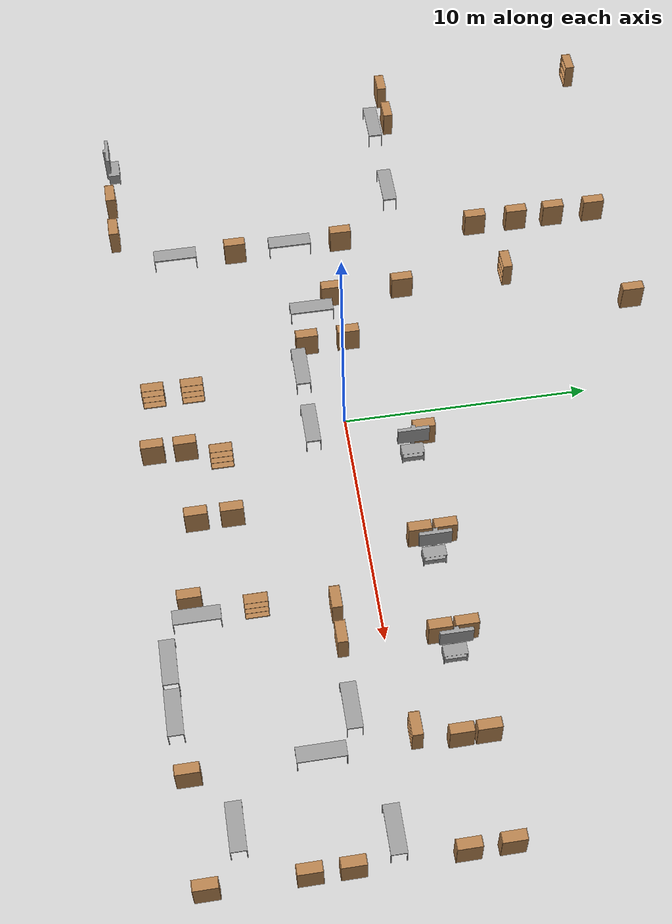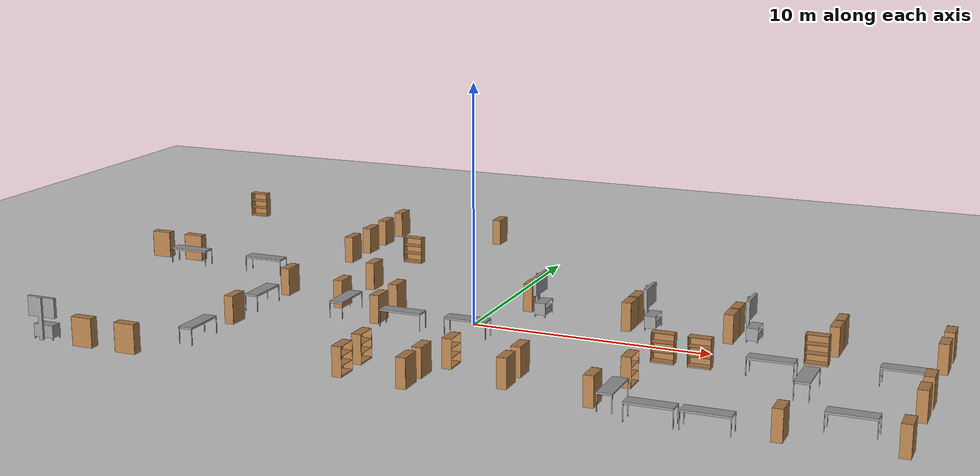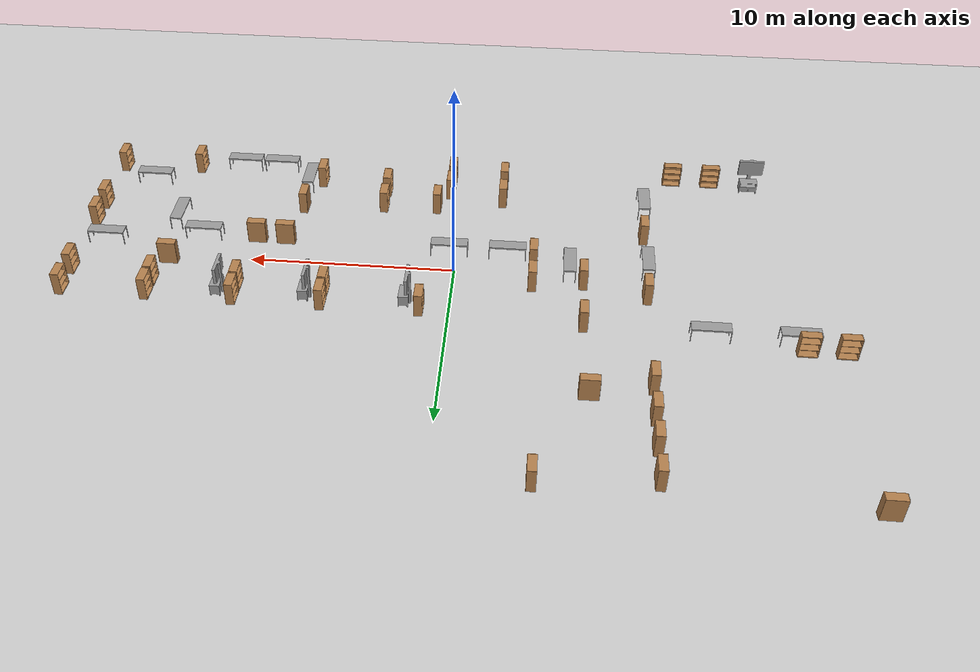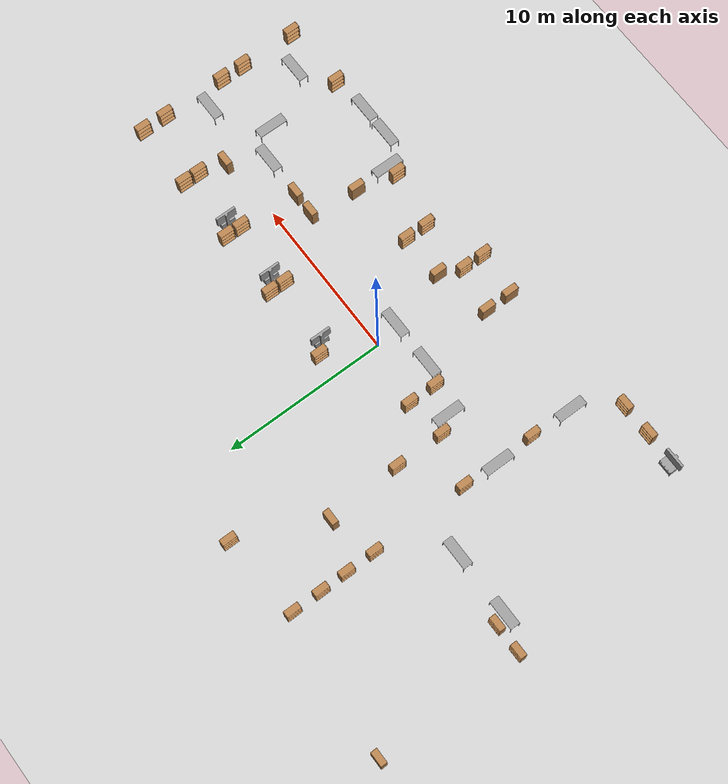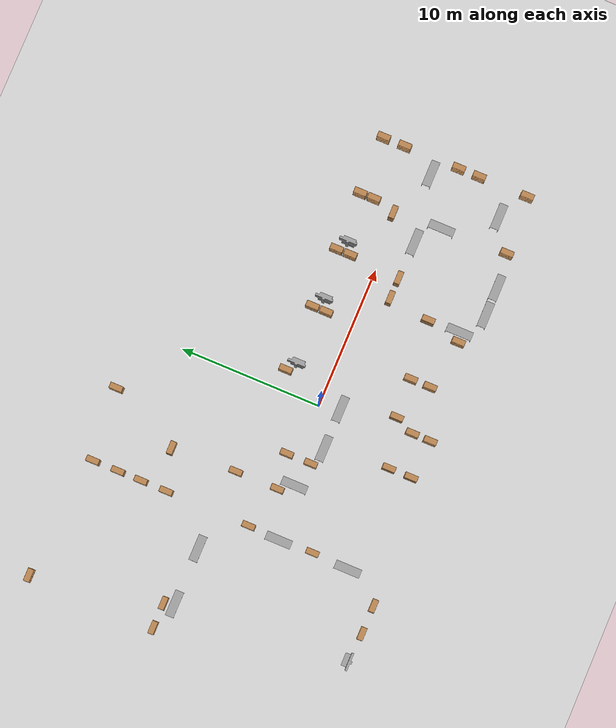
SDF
<sdf version="1.5">
 <world name="default">
  <include><uri>model://sun</uri></include>
  <include><uri>model://ground_plane</uri></include>
  <include><uri>model://bookshelf</uri><pose>0.86 -6.499 0 0 0 -1.57</pose></include>
  <include><uri>model://bookshelf</uri><pose>0.84 -7.8 0 0 0 -1.57</pose></include>
  <include><uri>model://bookshelf</uri><pose>-2.3 -7.55 0 0 0 1.57</pose></include>
  <include><uri>model://bookshelf</uri><pose>-2.3 -5.95 0 0 0 1.57</pose></include>
  <include><uri>model://bookshelf</uri><pose>1.07 -5.12 0 0 0 1.57</pose></include>
  <include><uri>model://bookshelf</uri><pose>4.21 -5 0 0 0 -1.57</pose></include>
  <include><uri>model://bookshelf</uri><pose>4.21 -6.398 0 0 0 -1.57</pose></include>
  <include><uri>model://bookshelf</uri><pose>7.753 -7 0 0 0 -1.57</pose></include>
  <include><uri>model://bookshelf</uri><pose>7.953 -4.56 0 0 0 1.57</pose></include>
  <include><uri>model://bookshelf</uri><pose>14.6 -7.72 0 0 0 -1.57</pose></include>
  <include><uri>model://bookshelf</uri><pose>8.552 -1.425 0 0 0 0</pose></include>
  <include><uri>model://bookshelf</uri><pose>10 -1.436 0 0 0 0</pose></include>
  <include><uri>model://lab_table</uri><pose>12.726 -1.682 0 0 0 0</pose></include>
  <include><uri>model://lab_table</uri><pose>14.316 -3 0 0 0 1.57</pose></include>
  <include><uri>model://lab_table</uri><pose>8.238 -6.807 0 0 0 1.57</pose></include>
  <include><uri>model://lab_table</uri><pose>10 -8 0 0 0 0</pose></include>
  <include><uri>model://lab_table</uri><pose>12 -8 0 0 0 0</pose></include>
  <include><uri>model://bookshelf</uri><pose>18.745 -7.51 0 0 0 -1.57</pose></include>
  <include><uri>model://lab_table</uri><pose>16.55 -6.285 0 0 0 0</pose></include>
  <include><uri>model://bookshelf</uri><pose>18.754 -2.51 0 0 0 -1.57</pose></include>
  <include><uri>model://bookshelf</uri><pose>18.754 -4 0 0 0 -1.57</pose></include>
  <include><uri>model://bookshelf</uri><pose>18.75 3 0 0 0 -1.57</pose></include>
  <include><uri>model://bookshelf</uri><pose>18.75 1.45 0 0 0 -1.57</pose></include>
  <include><uri>model://bookshelf</uri><pose>14 0.62 0 0 0 0</pose></include>
  <include><uri>model://lab_table</uri><pose>17.5 -0.91 0 0 0 0</pose></include>
  <include><uri>model://bookshelf</uri><pose>14.61 3 0 0 0 -1.57</pose></include>
  <include><uri>model://bookshelf</uri><pose>14.61 2 0 0 0 -1.57</pose></include>
  <include><uri>model://tv</uri><pose>11.1 2.43 0 0 0 1.57</pose></include>
  <include><uri>model://bookshelf</uri><pose>10.44 3 0 0 0 -1.57</pose></include>
  <include><uri>model://bookshelf</uri><pose>10.44 2 0 0 0 -1.57</pose></include>
  <include><uri>model://tv</uri><pose>6.9 2.43 0 0 0 1.57</pose></include>
  <include><uri>model://bookshelf</uri><pose>6.217 3 0 0 0 -1.57</pose></include>
  <include><uri>model://bookshelf</uri><pose>6.217 2 0 0 0 -1.57</pose></include>
  <include><uri>model://tv</uri><pose>2.13 2.43 0 0 0 1.57</pose></include>
  <include><uri>model://bookshelf</uri><pose>1.56 3 0 0 0 -1.57</pose></include>
  <include><uri>model://lab_table</uri><pose>0.32 -1.42 0 0 0 0</pose></include>
  <include><uri>model://lab_table</uri><pose>-2.56 -1.42 0 0 0 0</pose></include>
  <include><uri>model://bookshelf</uri><pose>-3.65 0.74 0 0 0 -1.57</pose></include>
  <include><uri>model://bookshelf</uri><pose>-3.65 -1 0 0 0 -1.57</pose></include>
  <include><uri>model://lab_table</uri><pose>-5.615 -0.55 0 0 0 1.57</pose></include>
  <include><uri>model://bookshelf</uri><pose>-6.08 3.42 0 0 0 -1.57</pose></include>
  <include><uri>model://bookshelf</uri><pose>-6.5 8.2 0 0 0 0</pose></include>
  <include><uri>model://bookshelf</uri><pose>-4 13 0 0 0 -1.57</pose></include>
  <include><uri>model://bookshelf</uri><pose>-18 13.62 0 0 0 0</pose></include>
  <include><uri>model://bookshelf</uri><pose>-16.24 4.25 0 0 0 3.1415</pose></include>
  <include><uri>model://bookshelf</uri><pose>-18 4.25 0 0 0 3.1415</pose></include>
  <include><uri>model://bookshelf</uri><pose>-9.1 12.52 0 0 0 -1.57</pose></include>
  <include><uri>model://bookshelf</uri><pose>-9.1 10.7 0 0 0 -1.57</pose></include>
  <include><uri>model://bookshelf</uri><pose>-9.1 9.04 0 0 0 -1.57</pose></include>
  <include><uri>model://bookshelf</uri><pose>-9.1 7.2 0 0 0 -1.57</pose></include>
  <include><uri>model://tv</uri><pose>-15 -8.27 0 0 0 3.1415</pose></include>
  <include><uri>model://lab_table</uri><pose>-16 3.75 0 0 0 0</pose></include>
  <include><uri>model://lab_table</uri><pose>-12 3.75 0 0 0 0</pose></include>
  <include><uri>model://lab_table</uri><pose>-9.4 -1 0 0 0 1.57</pose></include>
  <include><uri>model://lab_table</uri><pose>-9.4 -6 0 0 0 1.57</pose></include>
  <include><uri>model://bookshelf</uri><pose>-9.1 1.22 0 0 0 -1.57</pose></include>
  <include><uri>model://bookshelf</uri><pose>-9.1 -3.4 0 0 0 -1.57</pose></include>
  <include><uri>model://bookshelf</uri><pose>-11 -8.71 0 0 0 3.1415</pose></include>
  <include><uri>model://bookshelf</uri><pose>-13 -8.71 0 0 0 3.14159</pose></include>
  <include><uri>model://bookshelf</uri><pose>-6.08 0.406 0 0 0 -1.57</pose></include>
 </world>
</sdf>

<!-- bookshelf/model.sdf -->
<sdf version="1.5">
  <model name="bookshelf_old">
    <static>true</static>
    <link name="link">
      <inertial>
        <mass>1.0</mass>
      </inertial>
      <collision name="back">
        <pose>0 0.005 0.6 0 0 0</pose>
        <geometry>
          <box>
            <size>0.9 0.01 1.2</size>
          </box>
        </geometry>
      </collision>
      <visual name="visual1">
        <pose>0 0.005 0.6 0 0 0</pose>
        <geometry>
          <box>
            <size>0.9 0.01 1.2</size>
          </box>
        </geometry>
        <material>
          <script>
            <uri>file://media/materials/scripts/gazebo.material</uri>
            <name>Gazebo/Wood</name>
          </script>
        </material>
      </visual>
      <collision name="left_side">
        <pose>0.45 -0.195 0.6 0 0 0</pose>
        <geometry>
          <box>
            <size>0.02 0.4 1.2</size>
          </box>
        </geometry>
      </collision>
      <visual name="visual2">
        <pose>0.45 -0.195 0.6 0 0 0</pose>
        <geometry>
          <box>
            <size>0.02 0.4 1.2</size>
          </box>
        </geometry>
        <material>
          <script>
            <uri>file://media/materials/scripts/gazebo.material</uri>
            <name>Gazebo/Wood</name>
          </script>
        </material>
      </visual>
      <collision name="right_side">
        <pose>-0.45 -0.195 0.6 0 0 0</pose>
        <geometry>
          <box>
            <size>0.02 0.4 1.2</size>
          </box>
        </geometry>
      </collision>
      <visual name="visual3">
        <pose>-0.45 -0.195 0.6 0 0 0</pose>
        <geometry>
          <box>
            <size>0.02 0.4 1.2</size>
          </box>
        </geometry>
        <material>
          <script>
            <uri>file://media/materials/scripts/gazebo.material</uri>
            <name>Gazebo/Wood</name>
          </script>
        </material>
      </visual>
      <collision name="bottom">
        <pose>0 -0.195 0.03 0 0 0</pose>
        <geometry>
          <box>
            <size>0.88 0.4 0.06</size>
          </box>
        </geometry>
      </collision>
      <visual name="visual4">
        <pose>0 -0.195 0.03 0 0 0</pose>
        <geometry>
          <box>
            <size>0.88 0.4 0.06</size>
          </box>
        </geometry>
        <material>
          <script>
            <uri>file://media/materials/scripts/gazebo.material</uri>
            <name>Gazebo/Wood</name>
          </script>
        </material>
      </visual>
      <collision name="top">
        <pose>0 -0.195 1.19 0 0 0</pose>
        <geometry>
          <box>
            <size>0.88 0.4 0.02</size>
          </box>
        </geometry>
      </collision>
      <visual name="visual5">
        <pose>0 -0.195 1.19 0 0 0</pose>
        <geometry>
          <box>
            <size>0.88 0.4 0.02</size>
          </box>
        </geometry>
        <material>
          <script>
            <uri>file://media/materials/scripts/gazebo.material</uri>
            <name>Gazebo/Wood</name>
          </script>
        </material>
      </visual>
      <collision name="low_shelf">
        <pose>0 -0.195 0.43 0 0 0</pose>
        <geometry>
          <box>
            <size>0.88 0.4 0.02</size>
          </box>
        </geometry>
      </collision>
      <visual name="visual6">
        <pose>0 -0.195 0.43 0 0 0</pose>
        <geometry>
          <box>
            <size>0.88 0.4 0.02</size>
          </box>
        </geometry>
        <material>
          <script>
            <uri>file://media/materials/scripts/gazebo.material</uri>
            <name>Gazebo/Wood</name>
          </script>
        </material>
      </visual>
      <collision name="high_shelf">
        <pose>0 -0.195 0.8 0 0 0</pose>
        <geometry>
          <box>
            <size>0.88 0.4 0.02</size>
          </box>
        </geometry>
      </collision>
      <visual name="visual7">
        <pose>0 -0.195 0.8 0 0 0</pose>
        <geometry>
          <box>
            <size>0.88 0.4 0.02</size>
          </box>
        </geometry>
        <material>
          <script>
            <uri>file://media/materials/scripts/gazebo.material</uri>
            <name>Gazebo/Wood</name>
          </script>
        </material>
      </visual>
    </link>
  </model>
</sdf>

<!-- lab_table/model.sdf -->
<sdf version="1.5">
  <model name="lab_table">
    <static>true</static>
    <link name='defaultModel_0::custom_0'>
      <pose>0 0 0 0 0 0</pose>
      <gravity>1</gravity>
      <self_collide>0</self_collide>
      <kinematic>0</kinematic>
      <visual name='custom_0_visual'>
        <pose>0 0 0 0 0 0</pose>
        <geometry>
          <mesh>
            <uri>model://lab_table/lab_table.dae</uri>
            <scale>1 1 1</scale>
          </mesh>
        </geometry>
        <material>
          <script>
            <uri>file://media/materials/scripts/gazebo.material</uri>
            <name>Gazebo/Grey</name>
          </script>
        </material>
      </visual>
      <collision name='defaultModel_0::custom_0_collision'>
        <geometry>
          <mesh>
            <uri>model://lab_table/lab_table.dae</uri>
            <scale>1 1 1</scale>
          </mesh>
        </geometry>
        <pose>0 0 0 0 0 0</pose>
      </collision>
    </link>
  </model>
</sdf>

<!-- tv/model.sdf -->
<sdf version="1.5">
  <model name="tv">
    <static>true</static>
    <link name='defaultModel_0::custom_0'>
      <pose>0 0 0 0 0 0</pose>
      <gravity>1</gravity>
      <self_collide>0</self_collide>
      <kinematic>0</kinematic>
      <visual name='custom_0_visual'>
        <pose>0 0 0 0 0 0</pose>
        <geometry>
          <mesh>
            <uri>model://tv/tv.dae</uri>
            <scale>1 1 1</scale>
          </mesh>
        </geometry>
        <material>
          <script>
            <uri>file://media/materials/scripts/gazebo.material</uri>
            <name>Gazebo/Grey</name>
          </script>
        </material>
      </visual>
      <collision name='defaultModel_0::custom_0_collision'>
        <geometry>
          <mesh>
            <uri>model://tv/tv.dae</uri>
            <scale>1 1 1</scale>
          </mesh>
        </geometry>
        <pose>0 0 0 0 0 0</pose>
      </collision>
    </link>
  </model>
</sdf>
